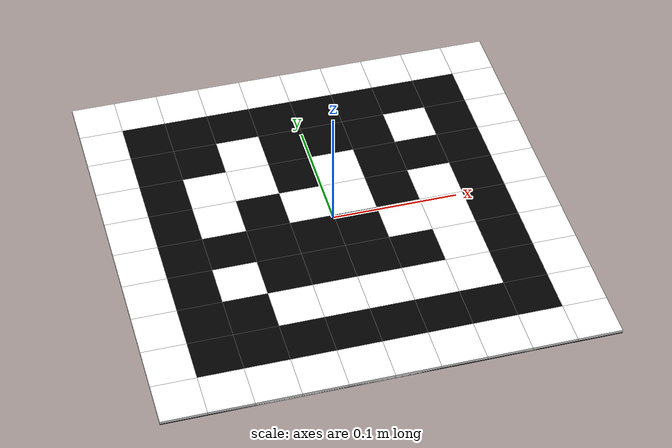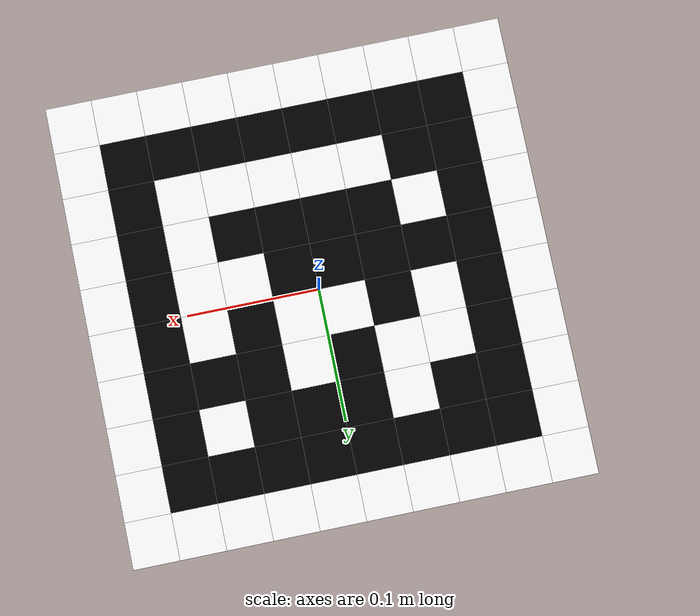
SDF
<sdf version="1.4">
  <model name='apriltag_13'>
  <static>true</static>
  <pose>0 0 0 0 0 0</pose>
     <link name='apriltag_body'>
      <visual name='block0'>
        <pose>-0.1575 -0.1575 0.001 0 0 0</pose>
          <geometry>
            <box>
            <size>0.035 0.035 0.003</size>
            </box>
          </geometry>
        <material>
          <ambient>1 1 1 1</ambient>
          <diffuse>1 1 1 1</diffuse>
          <specular>1 1 1 1</specular>
        </material>
      </visual>
      <visual name='block1'>
        <pose>-0.1575 -0.1225 0.001 0 0 0</pose>
          <geometry>
            <box>
            <size>0.035 0.035 0.003</size>
            </box>
          </geometry>
        <material>
          <ambient>1 1 1 1</ambient>
          <diffuse>1 1 1 1</diffuse>
          <specular>1 1 1 1</specular>
        </material>
      </visual>
      <visual name='block2'>
        <pose>-0.1575 -0.0875 0.001 0 0 0</pose>
          <geometry>
            <box>
            <size>0.035 0.035 0.003</size>
            </box>
          </geometry>
        <material>
          <ambient>1 1 1 1</ambient>
          <diffuse>1 1 1 1</diffuse>
          <specular>1 1 1 1</specular>
        </material>
      </visual>
      <visual name='block3'>
        <pose>-0.1575 -0.0525 0.001 0 0 0</pose>
          <geometry>
            <box>
            <size>0.035 0.035 0.003</size>
            </box>
          </geometry>
        <material>
          <ambient>1 1 1 1</ambient>
          <diffuse>1 1 1 1</diffuse>
          <specular>1 1 1 1</specular>
        </material>
      </visual>
      <visual name='block4'>
        <pose>-0.1575 -0.0175 0.001 0 0 0</pose>
          <geometry>
            <box>
            <size>0.035 0.035 0.003</size>
            </box>
          </geometry>
        <material>
          <ambient>1 1 1 1</ambient>
          <diffuse>1 1 1 1</diffuse>
          <specular>1 1 1 1</specular>
        </material>
      </visual>
      <visual name='block5'>
        <pose>-0.1575 0.0175 0.001 0 0 0</pose>
          <geometry>
            <box>
            <size>0.035 0.035 0.003</size>
            </box>
          </geometry>
        <material>
          <ambient>1 1 1 1</ambient>
          <diffuse>1 1 1 1</diffuse>
          <specular>1 1 1 1</specular>
        </material>
      </visual>
      <visual name='block6'>
        <pose>-0.1575 0.0525 0.001 0 0 0</pose>
          <geometry>
            <box>
            <size>0.035 0.035 0.003</size>
            </box>
          </geometry>
        <material>
          <ambient>1 1 1 1</ambient>
          <diffuse>1 1 1 1</diffuse>
          <specular>1 1 1 1</specular>
        </material>
      </visual>
      <visual name='block7'>
        <pose>-0.1575 0.0875 0.001 0 0 0</pose>
          <geometry>
            <box>
            <size>0.035 0.035 0.003</size>
            </box>
          </geometry>
        <material>
          <ambient>1 1 1 1</ambient>
          <diffuse>1 1 1 1</diffuse>
          <specular>1 1 1 1</specular>
        </material>
      </visual>
      <visual name='block8'>
        <pose>-0.1575 0.1225 0.001 0 0 0</pose>
          <geometry>
            <box>
            <size>0.035 0.035 0.003</size>
            </box>
          </geometry>
        <material>
          <ambient>1 1 1 1</ambient>
          <diffuse>1 1 1 1</diffuse>
          <specular>1 1 1 1</specular>
        </material>
      </visual>
      <visual name='block9'>
        <pose>-0.1575 0.1575 0.001 0 0 0</pose>
          <geometry>
            <box>
            <size>0.035 0.035 0.003</size>
            </box>
          </geometry>
        <material>
          <ambient>1 1 1 1</ambient>
          <diffuse>1 1 1 1</diffuse>
          <specular>1 1 1 1</specular>
        </material>
      </visual>
      <visual name='block10'>
        <pose>-0.1225 -0.1575 0.001 0 0 0</pose>
          <geometry>
            <box>
            <size>0.035 0.035 0.003</size>
            </box>
          </geometry>
        <material>
          <ambient>1 1 1 1</ambient>
          <diffuse>1 1 1 1</diffuse>
          <specular>1 1 1 1</specular>
        </material>
      </visual>
      <visual name='block11'>
        <pose>-0.1225 -0.1225 0.001 0 0 0</pose>
          <geometry>
            <box>
            <size>0.035 0.035 0.003</size>
            </box>
          </geometry>
        <material>
          <ambient>0 0 0 1</ambient>
          <diffuse>0 0 0 1</diffuse>
          <specular>0 0 0 1</specular>
        </material>
      </visual>
      <visual name='block12'>
        <pose>-0.1225 -0.0875 0.001 0 0 0</pose>
          <geometry>
            <box>
            <size>0.035 0.035 0.003</size>
            </box>
          </geometry>
        <material>
          <ambient>0 0 0 1</ambient>
          <diffuse>0 0 0 1</diffuse>
          <specular>0 0 0 1</specular>
        </material>
      </visual>
      <visual name='block13'>
        <pose>-0.1225 -0.0525 0.001 0 0 0</pose>
          <geometry>
            <box>
            <size>0.035 0.035 0.003</size>
            </box>
          </geometry>
        <material>
          <ambient>0 0 0 1</ambient>
          <diffuse>0 0 0 1</diffuse>
          <specular>0 0 0 1</specular>
        </material>
      </visual>
      <visual name='block14'>
        <pose>-0.1225 -0.0175 0.001 0 0 0</pose>
          <geometry>
            <box>
            <size>0.035 0.035 0.003</size>
            </box>
          </geometry>
        <material>
          <ambient>0 0 0 1</ambient>
          <diffuse>0 0 0 1</diffuse>
          <specular>0 0 0 1</specular>
        </material>
      </visual>
      <visual name='block15'>
        <pose>-0.1225 0.0175 0.001 0 0 0</pose>
          <geometry>
            <box>
            <size>0.035 0.035 0.003</size>
            </box>
          </geometry>
        <material>
          <ambient>0 0 0 1</ambient>
          <diffuse>0 0 0 1</diffuse>
          <specular>0 0 0 1</specular>
        </material>
      </visual>
      <visual name='block16'>
        <pose>-0.1225 0.0525 0.001 0 0 0</pose>
          <geometry>
            <box>
            <size>0.035 0.035 0.003</size>
            </box>
          </geometry>
        <material>
          <ambient>0 0 0 1</ambient>
          <diffuse>0 0 0 1</diffuse>
          <specular>0 0 0 1</specular>
        </material>
      </visual>
      <visual name='block17'>
        <pose>-0.1225 0.0875 0.001 0 0 0</pose>
          <geometry>
            <box>
            <size>0.035 0.035 0.003</size>
            </box>
          </geometry>
        <material>
          <ambient>0 0 0 1</ambient>
          <diffuse>0 0 0 1</diffuse>
          <specular>0 0 0 1</specular>
        </material>
      </visual>
      <visual name='block18'>
        <pose>-0.1225 0.1225 0.001 0 0 0</pose>
          <geometry>
            <box>
            <size>0.035 0.035 0.003</size>
            </box>
          </geometry>
        <material>
          <ambient>0 0 0 1</ambient>
          <diffuse>0 0 0 1</diffuse>
          <specular>0 0 0 1</specular>
        </material>
      </visual>
      <visual name='block19'>
        <pose>-0.1225 0.1575 0.001 0 0 0</pose>
          <geometry>
            <box>
            <size>0.035 0.035 0.003</size>
            </box>
          </geometry>
        <material>
          <ambient>1 1 1 1</ambient>
          <diffuse>1 1 1 1</diffuse>
          <specular>1 1 1 1</specular>
        </material>
      </visual>
      <visual name='block20'>
        <pose>-0.0875 -0.1575 0.001 0 0 0</pose>
          <geometry>
            <box>
            <size>0.035 0.035 0.003</size>
            </box>
          </geometry>
        <material>
          <ambient>1 1 1 1</ambient>
          <diffuse>1 1 1 1</diffuse>
          <specular>1 1 1 1</specular>
        </material>
      </visual>
      <visual name='block21'>
        <pose>-0.0875 -0.1225 0.001 0 0 0</pose>
          <geometry>
            <box>
            <size>0.035 0.035 0.003</size>
            </box>
          </geometry>
        <material>
          <ambient>0 0 0 1</ambient>
          <diffuse>0 0 0 1</diffuse>
          <specular>0 0 0 1</specular>
        </material>
      </visual>
      <visual name='block22'>
        <pose>-0.0875 -0.0875 0.001 0 0 0</pose>
          <geometry>
            <box>
            <size>0.035 0.035 0.003</size>
            </box>
          </geometry>
        <material>
          <ambient>0 0 0 1</ambient>
          <diffuse>0 0 0 1</diffuse>
          <specular>0 0 0 1</specular>
        </material>
      </visual>
      <visual name='block23'>
        <pose>-0.0875 -0.0525 0.001 0 0 0</pose>
          <geometry>
            <box>
            <size>0.035 0.035 0.003</size>
            </box>
          </geometry>
        <material>
          <ambient>1 1 1 1</ambient>
          <diffuse>1 1 1 1</diffuse>
          <specular>1 1 1 1</specular>
        </material>
      </visual>
      <visual name='block24'>
        <pose>-0.0875 -0.0175 0.001 0 0 0</pose>
          <geometry>
            <box>
            <size>0.035 0.035 0.003</size>
            </box>
          </geometry>
        <material>
          <ambient>0 0 0 1</ambient>
          <diffuse>0 0 0 1</diffuse>
          <specular>0 0 0 1</specular>
        </material>
      </visual>
      <visual name='block25'>
        <pose>-0.0875 0.0175 0.001 0 0 0</pose>
          <geometry>
            <box>
            <size>0.035 0.035 0.003</size>
            </box>
          </geometry>
        <material>
          <ambient>1 1 1 1</ambient>
          <diffuse>1 1 1 1</diffuse>
          <specular>1 1 1 1</specular>
        </material>
      </visual>
      <visual name='block26'>
        <pose>-0.0875 0.0525 0.001 0 0 0</pose>
          <geometry>
            <box>
            <size>0.035 0.035 0.003</size>
            </box>
          </geometry>
        <material>
          <ambient>1 1 1 1</ambient>
          <diffuse>1 1 1 1</diffuse>
          <specular>1 1 1 1</specular>
        </material>
      </visual>
      <visual name='block27'>
        <pose>-0.0875 0.0875 0.001 0 0 0</pose>
          <geometry>
            <box>
            <size>0.035 0.035 0.003</size>
            </box>
          </geometry>
        <material>
          <ambient>0 0 0 1</ambient>
          <diffuse>0 0 0 1</diffuse>
          <specular>0 0 0 1</specular>
        </material>
      </visual>
      <visual name='block28'>
        <pose>-0.0875 0.1225 0.001 0 0 0</pose>
          <geometry>
            <box>
            <size>0.035 0.035 0.003</size>
            </box>
          </geometry>
        <material>
          <ambient>0 0 0 1</ambient>
          <diffuse>0 0 0 1</diffuse>
          <specular>0 0 0 1</specular>
        </material>
      </visual>
      <visual name='block29'>
        <pose>-0.0875 0.1575 0.001 0 0 0</pose>
          <geometry>
            <box>
            <size>0.035 0.035 0.003</size>
            </box>
          </geometry>
        <material>
          <ambient>1 1 1 1</ambient>
          <diffuse>1 1 1 1</diffuse>
          <specular>1 1 1 1</specular>
        </material>
      </visual>
      <visual name='block30'>
        <pose>-0.0525 -0.1575 0.001 0 0 0</pose>
          <geometry>
            <box>
            <size>0.035 0.035 0.003</size>
            </box>
          </geometry>
        <material>
          <ambient>1 1 1 1</ambient>
          <diffuse>1 1 1 1</diffuse>
          <specular>1 1 1 1</specular>
        </material>
      </visual>
      <visual name='block31'>
        <pose>-0.0525 -0.1225 0.001 0 0 0</pose>
          <geometry>
            <box>
            <size>0.035 0.035 0.003</size>
            </box>
          </geometry>
        <material>
          <ambient>0 0 0 1</ambient>
          <diffuse>0 0 0 1</diffuse>
          <specular>0 0 0 1</specular>
        </material>
      </visual>
      <visual name='block32'>
        <pose>-0.0525 -0.0875 0.001 0 0 0</pose>
          <geometry>
            <box>
            <size>0.035 0.035 0.003</size>
            </box>
          </geometry>
        <material>
          <ambient>1 1 1 1</ambient>
          <diffuse>1 1 1 1</diffuse>
          <specular>1 1 1 1</specular>
        </material>
      </visual>
      <visual name='block33'>
        <pose>-0.0525 -0.0525 0.001 0 0 0</pose>
          <geometry>
            <box>
            <size>0.035 0.035 0.003</size>
            </box>
          </geometry>
        <material>
          <ambient>0 0 0 1</ambient>
          <diffuse>0 0 0 1</diffuse>
          <specular>0 0 0 1</specular>
        </material>
      </visual>
      <visual name='block34'>
        <pose>-0.0525 -0.0175 0.001 0 0 0</pose>
          <geometry>
            <box>
            <size>0.035 0.035 0.003</size>
            </box>
          </geometry>
        <material>
          <ambient>0 0 0 1</ambient>
          <diffuse>0 0 0 1</diffuse>
          <specular>0 0 0 1</specular>
        </material>
      </visual>
      <visual name='block35'>
        <pose>-0.0525 0.0175 0.001 0 0 0</pose>
          <geometry>
            <box>
            <size>0.035 0.035 0.003</size>
            </box>
          </geometry>
        <material>
          <ambient>0 0 0 1</ambient>
          <diffuse>0 0 0 1</diffuse>
          <specular>0 0 0 1</specular>
        </material>
      </visual>
      <visual name='block36'>
        <pose>-0.0525 0.0525 0.001 0 0 0</pose>
          <geometry>
            <box>
            <size>0.035 0.035 0.003</size>
            </box>
          </geometry>
        <material>
          <ambient>1 1 1 1</ambient>
          <diffuse>1 1 1 1</diffuse>
          <specular>1 1 1 1</specular>
        </material>
      </visual>
      <visual name='block37'>
        <pose>-0.0525 0.0875 0.001 0 0 0</pose>
          <geometry>
            <box>
            <size>0.035 0.035 0.003</size>
            </box>
          </geometry>
        <material>
          <ambient>1 1 1 1</ambient>
          <diffuse>1 1 1 1</diffuse>
          <specular>1 1 1 1</specular>
        </material>
      </visual>
      <visual name='block38'>
        <pose>-0.0525 0.1225 0.001 0 0 0</pose>
          <geometry>
            <box>
            <size>0.035 0.035 0.003</size>
            </box>
          </geometry>
        <material>
          <ambient>0 0 0 1</ambient>
          <diffuse>0 0 0 1</diffuse>
          <specular>0 0 0 1</specular>
        </material>
      </visual>
      <visual name='block39'>
        <pose>-0.0525 0.1575 0.001 0 0 0</pose>
          <geometry>
            <box>
            <size>0.035 0.035 0.003</size>
            </box>
          </geometry>
        <material>
          <ambient>1 1 1 1</ambient>
          <diffuse>1 1 1 1</diffuse>
          <specular>1 1 1 1</specular>
        </material>
      </visual>
      <visual name='block40'>
        <pose>-0.0175 -0.1575 0.001 0 0 0</pose>
          <geometry>
            <box>
            <size>0.035 0.035 0.003</size>
            </box>
          </geometry>
        <material>
          <ambient>1 1 1 1</ambient>
          <diffuse>1 1 1 1</diffuse>
          <specular>1 1 1 1</specular>
        </material>
      </visual>
      <visual name='block41'>
        <pose>-0.0175 -0.1225 0.001 0 0 0</pose>
          <geometry>
            <box>
            <size>0.035 0.035 0.003</size>
            </box>
          </geometry>
        <material>
          <ambient>0 0 0 1</ambient>
          <diffuse>0 0 0 1</diffuse>
          <specular>0 0 0 1</specular>
        </material>
      </visual>
      <visual name='block42'>
        <pose>-0.0175 -0.0875 0.001 0 0 0</pose>
          <geometry>
            <box>
            <size>0.035 0.035 0.003</size>
            </box>
          </geometry>
        <material>
          <ambient>1 1 1 1</ambient>
          <diffuse>1 1 1 1</diffuse>
          <specular>1 1 1 1</specular>
        </material>
      </visual>
      <visual name='block43'>
        <pose>-0.0175 -0.0525 0.001 0 0 0</pose>
          <geometry>
            <box>
            <size>0.035 0.035 0.003</size>
            </box>
          </geometry>
        <material>
          <ambient>0 0 0 1</ambient>
          <diffuse>0 0 0 1</diffuse>
          <specular>0 0 0 1</specular>
        </material>
      </visual>
      <visual name='block44'>
        <pose>-0.0175 -0.0175 0.001 0 0 0</pose>
          <geometry>
            <box>
            <size>0.035 0.035 0.003</size>
            </box>
          </geometry>
        <material>
          <ambient>0 0 0 1</ambient>
          <diffuse>0 0 0 1</diffuse>
          <specular>0 0 0 1</specular>
        </material>
      </visual>
      <visual name='block45'>
        <pose>-0.0175 0.0175 0.001 0 0 0</pose>
          <geometry>
            <box>
            <size>0.035 0.035 0.003</size>
            </box>
          </geometry>
        <material>
          <ambient>1 1 1 1</ambient>
          <diffuse>1 1 1 1</diffuse>
          <specular>1 1 1 1</specular>
        </material>
      </visual>
      <visual name='block46'>
        <pose>-0.0175 0.0525 0.001 0 0 0</pose>
          <geometry>
            <box>
            <size>0.035 0.035 0.003</size>
            </box>
          </geometry>
        <material>
          <ambient>0 0 0 1</ambient>
          <diffuse>0 0 0 1</diffuse>
          <specular>0 0 0 1</specular>
        </material>
      </visual>
      <visual name='block47'>
        <pose>-0.0175 0.0875 0.001 0 0 0</pose>
          <geometry>
            <box>
            <size>0.035 0.035 0.003</size>
            </box>
          </geometry>
        <material>
          <ambient>0 0 0 1</ambient>
          <diffuse>0 0 0 1</diffuse>
          <specular>0 0 0 1</specular>
        </material>
      </visual>
      <visual name='block48'>
        <pose>-0.0175 0.1225 0.001 0 0 0</pose>
          <geometry>
            <box>
            <size>0.035 0.035 0.003</size>
            </box>
          </geometry>
        <material>
          <ambient>0 0 0 1</ambient>
          <diffuse>0 0 0 1</diffuse>
          <specular>0 0 0 1</specular>
        </material>
      </visual>
      <visual name='block49'>
        <pose>-0.0175 0.1575 0.001 0 0 0</pose>
          <geometry>
            <box>
            <size>0.035 0.035 0.003</size>
            </box>
          </geometry>
        <material>
          <ambient>1 1 1 1</ambient>
          <diffuse>1 1 1 1</diffuse>
          <specular>1 1 1 1</specular>
        </material>
      </visual>
      <visual name='block50'>
        <pose>0.0175 -0.1575 0.001 0 0 0</pose>
          <geometry>
            <box>
            <size>0.035 0.035 0.003</size>
            </box>
          </geometry>
        <material>
          <ambient>1 1 1 1</ambient>
          <diffuse>1 1 1 1</diffuse>
          <specular>1 1 1 1</specular>
        </material>
      </visual>
      <visual name='block51'>
        <pose>0.0175 -0.1225 0.001 0 0 0</pose>
          <geometry>
            <box>
            <size>0.035 0.035 0.003</size>
            </box>
          </geometry>
        <material>
          <ambient>0 0 0 1</ambient>
          <diffuse>0 0 0 1</diffuse>
          <specular>0 0 0 1</specular>
        </material>
      </visual>
      <visual name='block52'>
        <pose>0.0175 -0.0875 0.001 0 0 0</pose>
          <geometry>
            <box>
            <size>0.035 0.035 0.003</size>
            </box>
          </geometry>
        <material>
          <ambient>1 1 1 1</ambient>
          <diffuse>1 1 1 1</diffuse>
          <specular>1 1 1 1</specular>
        </material>
      </visual>
      <visual name='block53'>
        <pose>0.0175 -0.0525 0.001 0 0 0</pose>
          <geometry>
            <box>
            <size>0.035 0.035 0.003</size>
            </box>
          </geometry>
        <material>
          <ambient>0 0 0 1</ambient>
          <diffuse>0 0 0 1</diffuse>
          <specular>0 0 0 1</specular>
        </material>
      </visual>
      <visual name='block54'>
        <pose>0.0175 -0.0175 0.001 0 0 0</pose>
          <geometry>
            <box>
            <size>0.035 0.035 0.003</size>
            </box>
          </geometry>
        <material>
          <ambient>0 0 0 1</ambient>
          <diffuse>0 0 0 1</diffuse>
          <specular>0 0 0 1</specular>
        </material>
      </visual>
      <visual name='block55'>
        <pose>0.0175 0.0175 0.001 0 0 0</pose>
          <geometry>
            <box>
            <size>0.035 0.035 0.003</size>
            </box>
          </geometry>
        <material>
          <ambient>1 1 1 1</ambient>
          <diffuse>1 1 1 1</diffuse>
          <specular>1 1 1 1</specular>
        </material>
      </visual>
      <visual name='block56'>
        <pose>0.0175 0.0525 0.001 0 0 0</pose>
          <geometry>
            <box>
            <size>0.035 0.035 0.003</size>
            </box>
          </geometry>
        <material>
          <ambient>1 1 1 1</ambient>
          <diffuse>1 1 1 1</diffuse>
          <specular>1 1 1 1</specular>
        </material>
      </visual>
      <visual name='block57'>
        <pose>0.0175 0.0875 0.001 0 0 0</pose>
          <geometry>
            <box>
            <size>0.035 0.035 0.003</size>
            </box>
          </geometry>
        <material>
          <ambient>0 0 0 1</ambient>
          <diffuse>0 0 0 1</diffuse>
          <specular>0 0 0 1</specular>
        </material>
      </visual>
      <visual name='block58'>
        <pose>0.0175 0.1225 0.001 0 0 0</pose>
          <geometry>
            <box>
            <size>0.035 0.035 0.003</size>
            </box>
          </geometry>
        <material>
          <ambient>0 0 0 1</ambient>
          <diffuse>0 0 0 1</diffuse>
          <specular>0 0 0 1</specular>
        </material>
      </visual>
      <visual name='block59'>
        <pose>0.0175 0.1575 0.001 0 0 0</pose>
          <geometry>
            <box>
            <size>0.035 0.035 0.003</size>
            </box>
          </geometry>
        <material>
          <ambient>1 1 1 1</ambient>
          <diffuse>1 1 1 1</diffuse>
          <specular>1 1 1 1</specular>
        </material>
      </visual>
      <visual name='block60'>
        <pose>0.0525 -0.1575 0.001 0 0 0</pose>
          <geometry>
            <box>
            <size>0.035 0.035 0.003</size>
            </box>
          </geometry>
        <material>
          <ambient>1 1 1 1</ambient>
          <diffuse>1 1 1 1</diffuse>
          <specular>1 1 1 1</specular>
        </material>
      </visual>
      <visual name='block61'>
        <pose>0.0525 -0.1225 0.001 0 0 0</pose>
          <geometry>
            <box>
            <size>0.035 0.035 0.003</size>
            </box>
          </geometry>
        <material>
          <ambient>0 0 0 1</ambient>
          <diffuse>0 0 0 1</diffuse>
          <specular>0 0 0 1</specular>
        </material>
      </visual>
      <visual name='block62'>
        <pose>0.0525 -0.0875 0.001 0 0 0</pose>
          <geometry>
            <box>
            <size>0.035 0.035 0.003</size>
            </box>
          </geometry>
        <material>
          <ambient>1 1 1 1</ambient>
          <diffuse>1 1 1 1</diffuse>
          <specular>1 1 1 1</specular>
        </material>
      </visual>
      <visual name='block63'>
        <pose>0.0525 -0.0525 0.001 0 0 0</pose>
          <geometry>
            <box>
            <size>0.035 0.035 0.003</size>
            </box>
          </geometry>
        <material>
          <ambient>0 0 0 1</ambient>
          <diffuse>0 0 0 1</diffuse>
          <specular>0 0 0 1</specular>
        </material>
      </visual>
      <visual name='block64'>
        <pose>0.0525 -0.0175 0.001 0 0 0</pose>
          <geometry>
            <box>
            <size>0.035 0.035 0.003</size>
            </box>
          </geometry>
        <material>
          <ambient>1 1 1 1</ambient>
          <diffuse>1 1 1 1</diffuse>
          <specular>1 1 1 1</specular>
        </material>
      </visual>
      <visual name='block65'>
        <pose>0.0525 0.0175 0.001 0 0 0</pose>
          <geometry>
            <box>
            <size>0.035 0.035 0.003</size>
            </box>
          </geometry>
        <material>
          <ambient>0 0 0 1</ambient>
          <diffuse>0 0 0 1</diffuse>
          <specular>0 0 0 1</specular>
        </material>
      </visual>
      <visual name='block66'>
        <pose>0.0525 0.0525 0.001 0 0 0</pose>
          <geometry>
            <box>
            <size>0.035 0.035 0.003</size>
            </box>
          </geometry>
        <material>
          <ambient>0 0 0 1</ambient>
          <diffuse>0 0 0 1</diffuse>
          <specular>0 0 0 1</specular>
        </material>
      </visual>
      <visual name='block67'>
        <pose>0.0525 0.0875 0.001 0 0 0</pose>
          <geometry>
            <box>
            <size>0.035 0.035 0.003</size>
            </box>
          </geometry>
        <material>
          <ambient>0 0 0 1</ambient>
          <diffuse>0 0 0 1</diffuse>
          <specular>0 0 0 1</specular>
        </material>
      </visual>
      <visual name='block68'>
        <pose>0.0525 0.1225 0.001 0 0 0</pose>
          <geometry>
            <box>
            <size>0.035 0.035 0.003</size>
            </box>
          </geometry>
        <material>
          <ambient>0 0 0 1</ambient>
          <diffuse>0 0 0 1</diffuse>
          <specular>0 0 0 1</specular>
        </material>
      </visual>
      <visual name='block69'>
        <pose>0.0525 0.1575 0.001 0 0 0</pose>
          <geometry>
            <box>
            <size>0.035 0.035 0.003</size>
            </box>
          </geometry>
        <material>
          <ambient>1 1 1 1</ambient>
          <diffuse>1 1 1 1</diffuse>
          <specular>1 1 1 1</specular>
        </material>
      </visual>
      <visual name='block70'>
        <pose>0.0875 -0.1575 0.001 0 0 0</pose>
          <geometry>
            <box>
            <size>0.035 0.035 0.003</size>
            </box>
          </geometry>
        <material>
          <ambient>1 1 1 1</ambient>
          <diffuse>1 1 1 1</diffuse>
          <specular>1 1 1 1</specular>
        </material>
      </visual>
      <visual name='block71'>
        <pose>0.0875 -0.1225 0.001 0 0 0</pose>
          <geometry>
            <box>
            <size>0.035 0.035 0.003</size>
            </box>
          </geometry>
        <material>
          <ambient>0 0 0 1</ambient>
          <diffuse>0 0 0 1</diffuse>
          <specular>0 0 0 1</specular>
        </material>
      </visual>
      <visual name='block72'>
        <pose>0.0875 -0.0875 0.001 0 0 0</pose>
          <geometry>
            <box>
            <size>0.035 0.035 0.003</size>
            </box>
          </geometry>
        <material>
          <ambient>1 1 1 1</ambient>
          <diffuse>1 1 1 1</diffuse>
          <specular>1 1 1 1</specular>
        </material>
      </visual>
      <visual name='block73'>
        <pose>0.0875 -0.0525 0.001 0 0 0</pose>
          <geometry>
            <box>
            <size>0.035 0.035 0.003</size>
            </box>
          </geometry>
        <material>
          <ambient>1 1 1 1</ambient>
          <diffuse>1 1 1 1</diffuse>
          <specular>1 1 1 1</specular>
        </material>
      </visual>
      <visual name='block74'>
        <pose>0.0875 -0.0175 0.001 0 0 0</pose>
          <geometry>
            <box>
            <size>0.035 0.035 0.003</size>
            </box>
          </geometry>
        <material>
          <ambient>1 1 1 1</ambient>
          <diffuse>1 1 1 1</diffuse>
          <specular>1 1 1 1</specular>
        </material>
      </visual>
      <visual name='block75'>
        <pose>0.0875 0.0175 0.001 0 0 0</pose>
          <geometry>
            <box>
            <size>0.035 0.035 0.003</size>
            </box>
          </geometry>
        <material>
          <ambient>1 1 1 1</ambient>
          <diffuse>1 1 1 1</diffuse>
          <specular>1 1 1 1</specular>
        </material>
      </visual>
      <visual name='block76'>
        <pose>0.0875 0.0525 0.001 0 0 0</pose>
          <geometry>
            <box>
            <size>0.035 0.035 0.003</size>
            </box>
          </geometry>
        <material>
          <ambient>0 0 0 1</ambient>
          <diffuse>0 0 0 1</diffuse>
          <specular>0 0 0 1</specular>
        </material>
      </visual>
      <visual name='block77'>
        <pose>0.0875 0.0875 0.001 0 0 0</pose>
          <geometry>
            <box>
            <size>0.035 0.035 0.003</size>
            </box>
          </geometry>
        <material>
          <ambient>1 1 1 1</ambient>
          <diffuse>1 1 1 1</diffuse>
          <specular>1 1 1 1</specular>
        </material>
      </visual>
      <visual name='block78'>
        <pose>0.0875 0.1225 0.001 0 0 0</pose>
          <geometry>
            <box>
            <size>0.035 0.035 0.003</size>
            </box>
          </geometry>
        <material>
          <ambient>0 0 0 1</ambient>
          <diffuse>0 0 0 1</diffuse>
          <specular>0 0 0 1</specular>
        </material>
      </visual>
      <visual name='block79'>
        <pose>0.0875 0.1575 0.001 0 0 0</pose>
          <geometry>
            <box>
            <size>0.035 0.035 0.003</size>
            </box>
          </geometry>
        <material>
          <ambient>1 1 1 1</ambient>
          <diffuse>1 1 1 1</diffuse>
          <specular>1 1 1 1</specular>
        </material>
      </visual>
      <visual name='block80'>
        <pose>0.1225 -0.1575 0.001 0 0 0</pose>
          <geometry>
            <box>
            <size>0.035 0.035 0.003</size>
            </box>
          </geometry>
        <material>
          <ambient>1 1 1 1</ambient>
          <diffuse>1 1 1 1</diffuse>
          <specular>1 1 1 1</specular>
        </material>
      </visual>
      <visual name='block81'>
        <pose>0.1225 -0.1225 0.001 0 0 0</pose>
          <geometry>
            <box>
            <size>0.035 0.035 0.003</size>
            </box>
          </geometry>
        <material>
          <ambient>0 0 0 1</ambient>
          <diffuse>0 0 0 1</diffuse>
          <specular>0 0 0 1</specular>
        </material>
      </visual>
      <visual name='block82'>
        <pose>0.1225 -0.0875 0.001 0 0 0</pose>
          <geometry>
            <box>
            <size>0.035 0.035 0.003</size>
            </box>
          </geometry>
        <material>
          <ambient>0 0 0 1</ambient>
          <diffuse>0 0 0 1</diffuse>
          <specular>0 0 0 1</specular>
        </material>
      </visual>
      <visual name='block83'>
        <pose>0.1225 -0.0525 0.001 0 0 0</pose>
          <geometry>
            <box>
            <size>0.035 0.035 0.003</size>
            </box>
          </geometry>
        <material>
          <ambient>0 0 0 1</ambient>
          <diffuse>0 0 0 1</diffuse>
          <specular>0 0 0 1</specular>
        </material>
      </visual>
      <visual name='block84'>
        <pose>0.1225 -0.0175 0.001 0 0 0</pose>
          <geometry>
            <box>
            <size>0.035 0.035 0.003</size>
            </box>
          </geometry>
        <material>
          <ambient>0 0 0 1</ambient>
          <diffuse>0 0 0 1</diffuse>
          <specular>0 0 0 1</specular>
        </material>
      </visual>
      <visual name='block85'>
        <pose>0.1225 0.0175 0.001 0 0 0</pose>
          <geometry>
            <box>
            <size>0.035 0.035 0.003</size>
            </box>
          </geometry>
        <material>
          <ambient>0 0 0 1</ambient>
          <diffuse>0 0 0 1</diffuse>
          <specular>0 0 0 1</specular>
        </material>
      </visual>
      <visual name='block86'>
        <pose>0.1225 0.0525 0.001 0 0 0</pose>
          <geometry>
            <box>
            <size>0.035 0.035 0.003</size>
            </box>
          </geometry>
        <material>
          <ambient>0 0 0 1</ambient>
          <diffuse>0 0 0 1</diffuse>
          <specular>0 0 0 1</specular>
        </material>
      </visual>
      <visual name='block87'>
        <pose>0.1225 0.0875 0.001 0 0 0</pose>
          <geometry>
            <box>
            <size>0.035 0.035 0.003</size>
            </box>
          </geometry>
        <material>
          <ambient>0 0 0 1</ambient>
          <diffuse>0 0 0 1</diffuse>
          <specular>0 0 0 1</specular>
        </material>
      </visual>
      <visual name='block88'>
        <pose>0.1225 0.1225 0.001 0 0 0</pose>
          <geometry>
            <box>
            <size>0.035 0.035 0.003</size>
            </box>
          </geometry>
        <material>
          <ambient>0 0 0 1</ambient>
          <diffuse>0 0 0 1</diffuse>
          <specular>0 0 0 1</specular>
        </material>
      </visual>
      <visual name='block89'>
        <pose>0.1225 0.1575 0.001 0 0 0</pose>
          <geometry>
            <box>
            <size>0.035 0.035 0.003</size>
            </box>
          </geometry>
        <material>
          <ambient>1 1 1 1</ambient>
          <diffuse>1 1 1 1</diffuse>
          <specular>1 1 1 1</specular>
        </material>
      </visual>
      <visual name='block90'>
        <pose>0.1575 -0.1575 0.001 0 0 0</pose>
          <geometry>
            <box>
            <size>0.035 0.035 0.003</size>
            </box>
          </geometry>
        <material>
          <ambient>1 1 1 1</ambient>
          <diffuse>1 1 1 1</diffuse>
          <specular>1 1 1 1</specular>
        </material>
      </visual>
      <visual name='block91'>
        <pose>0.1575 -0.1225 0.001 0 0 0</pose>
          <geometry>
            <box>
            <size>0.035 0.035 0.003</size>
            </box>
          </geometry>
        <material>
          <ambient>1 1 1 1</ambient>
          <diffuse>1 1 1 1</diffuse>
          <specular>1 1 1 1</specular>
        </material>
      </visual>
      <visual name='block92'>
        <pose>0.1575 -0.0875 0.001 0 0 0</pose>
          <geometry>
            <box>
            <size>0.035 0.035 0.003</size>
            </box>
          </geometry>
        <material>
          <ambient>1 1 1 1</ambient>
          <diffuse>1 1 1 1</diffuse>
          <specular>1 1 1 1</specular>
        </material>
      </visual>
      <visual name='block93'>
        <pose>0.1575 -0.0525 0.001 0 0 0</pose>
          <geometry>
            <box>
            <size>0.035 0.035 0.003</size>
            </box>
          </geometry>
        <material>
          <ambient>1 1 1 1</ambient>
          <diffuse>1 1 1 1</diffuse>
          <specular>1 1 1 1</specular>
        </material>
      </visual>
      <visual name='block94'>
        <pose>0.1575 -0.0175 0.001 0 0 0</pose>
          <geometry>
            <box>
            <size>0.035 0.035 0.003</size>
            </box>
          </geometry>
        <material>
          <ambient>1 1 1 1</ambient>
          <diffuse>1 1 1 1</diffuse>
          <specular>1 1 1 1</specular>
        </material>
      </visual>
      <visual name='block95'>
        <pose>0.1575 0.0175 0.001 0 0 0</pose>
          <geometry>
            <box>
            <size>0.035 0.035 0.003</size>
            </box>
          </geometry>
        <material>
          <ambient>1 1 1 1</ambient>
          <diffuse>1 1 1 1</diffuse>
          <specular>1 1 1 1</specular>
        </material>
      </visual>
      <visual name='block96'>
        <pose>0.1575 0.0525 0.001 0 0 0</pose>
          <geometry>
            <box>
            <size>0.035 0.035 0.003</size>
            </box>
          </geometry>
        <material>
          <ambient>1 1 1 1</ambient>
          <diffuse>1 1 1 1</diffuse>
          <specular>1 1 1 1</specular>
        </material>
      </visual>
      <visual name='block97'>
        <pose>0.1575 0.0875 0.001 0 0 0</pose>
          <geometry>
            <box>
            <size>0.035 0.035 0.003</size>
            </box>
          </geometry>
        <material>
          <ambient>1 1 1 1</ambient>
          <diffuse>1 1 1 1</diffuse>
          <specular>1 1 1 1</specular>
        </material>
      </visual>
      <visual name='block98'>
        <pose>0.1575 0.1225 0.001 0 0 0</pose>
          <geometry>
            <box>
            <size>0.035 0.035 0.003</size>
            </box>
          </geometry>
        <material>
          <ambient>1 1 1 1</ambient>
          <diffuse>1 1 1 1</diffuse>
          <specular>1 1 1 1</specular>
        </material>
      </visual>
      <visual name='block99'>
        <pose>0.1575 0.1575 0.001 0 0 0</pose>
          <geometry>
            <box>
            <size>0.035 0.035 0.003</size>
            </box>
          </geometry>
        <material>
          <ambient>1 1 1 1</ambient>
          <diffuse>1 1 1 1</diffuse>
          <specular>1 1 1 1</specular>
        </material>
      </visual>
      <visual name='thin_layer'>
        <pose>0 0 0 0 0 0</pose>
          <geometry>
            <box>
            <size>0.35 0.35 0.001</size>
            </box>
          </geometry>
        <material>
          <ambient>0 0 0 1</ambient>
          <diffuse>0 0 0 1</diffuse>
          <specular>0 0 0 1</specular>
        </material>
      </visual>
    </link>
  </model>
</sdf>
